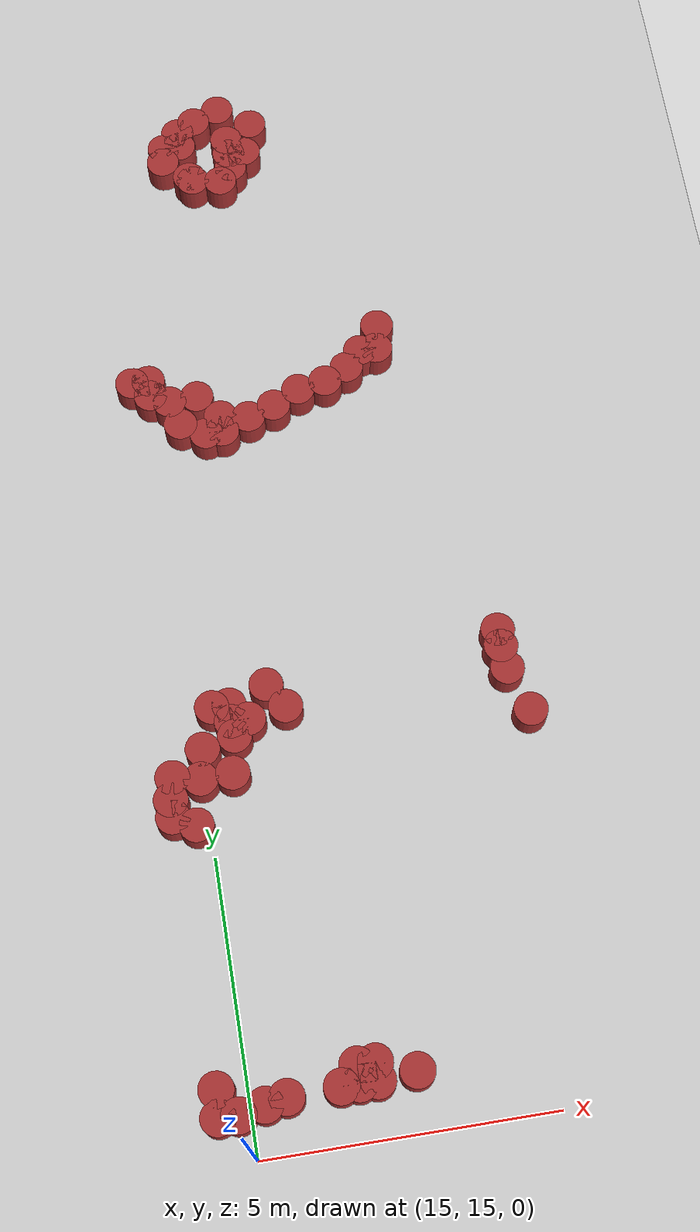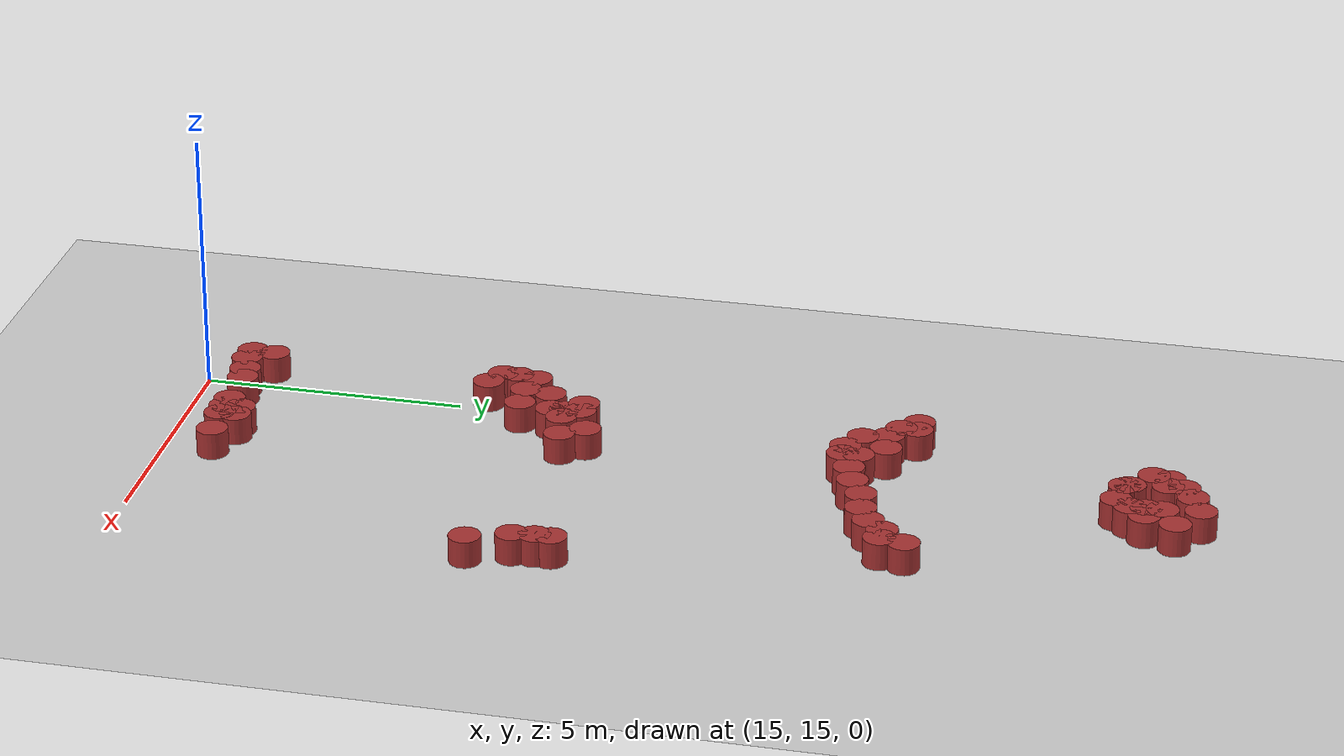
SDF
<sdf version="1.6">
 <world name="default">
  <model name="ground_plane">
   <static>1</static>
   <link name="link">
    <collision name="collision">
     <geometry><plane><normal>0 0 1</normal><size>100 100</size></plane></geometry>
     <surface><friction><ode><mu>100</mu><mu2>50</mu2></ode></friction></surface>
    </collision>
    <visual name="visual">
     <cast_shadows>0</cast_shadows>
     <geometry><plane><normal>0 0 1</normal><size>100 100</size></plane></geometry>
     <material>
      <script><uri>file://media/materials/scripts/gazebo.material</uri><name>Gazebo/Grey</name></script>
     </material>
    </visual>
   </link>
  </model>
  <model name="unit_cylinder_122">
   <static>1</static>
   <pose>14.4747 21.3826 0 0 -0 0</pose>
   <link name="link">
    <inertial>
     <mass>1</mass>
     <inertia><ixx>0.145833</ixx><ixy>0</ixy><ixz>0</ixz><iyy>0.145833</iyy><iyz>0</iyz><izz>0.125</izz></inertia>
    </inertial>
    <collision name="collision">
     <geometry><cylinder><radius>0.3</radius><length>1</length></cylinder></geometry>
    </collision>
    <visual name="visual">
     <geometry><cylinder><radius>0.3</radius><length>1</length></cylinder></geometry>
     <material><ambient>0.648 0.192 0.192 1</ambient><diffuse>0.648 0.192 0.192 1</diffuse></material>
     <material>
      <script><name>Gazebo/Grey</name><uri>file://media/materials/scripts/gazebo.material</uri></script>
     </material>
    </visual>
   </link>
  </model>
  <model name="unit_cylinder_123">
   <static>1</static>
   <pose>14.7741 20.5054 0 0 -0 0</pose>
   <link name="link">
    <inertial>
     <mass>1</mass>
     <inertia><ixx>0.145833</ixx><ixy>0</ixy><ixz>0</ixz><iyy>0.145833</iyy><iyz>0</iyz><izz>0.125</izz></inertia>
    </inertial>
    <collision name="collision">
     <geometry><cylinder><radius>0.3</radius><length>1</length></cylinder></geometry>
    </collision>
    <visual name="visual">
     <geometry><cylinder><radius>0.3</radius><length>1</length></cylinder></geometry>
     <material><ambient>0.648 0.192 0.192 1</ambient><diffuse>0.648 0.192 0.192 1</diffuse></material>
     <material>
      <script><name>Gazebo/Grey</name><uri>file://media/materials/scripts/gazebo.material</uri></script>
     </material>
    </visual>
   </link>
  </model>
  <model name="unit_cylinder_124">
   <static>1</static>
   <pose>15.4674 27.8557 0 0 -0 0</pose>
   <link name="link">
    <inertial>
     <mass>1</mass>
     <inertia><ixx>0.145833</ixx><ixy>0</ixy><ixz>0</ixz><iyy>0.145833</iyy><iyz>0</iyz><izz>0.125</izz></inertia>
    </inertial>
    <collision name="collision">
     <geometry><cylinder><radius>0.3</radius><length>1</length></cylinder></geometry>
    </collision>
    <visual name="visual">
     <geometry><cylinder><radius>0.3</radius><length>1</length></cylinder></geometry>
     <material><ambient>0.648 0.192 0.192 1</ambient><diffuse>0.648 0.192 0.192 1</diffuse></material>
     <material>
      <script><name>Gazebo/Grey</name><uri>file://media/materials/scripts/gazebo.material</uri></script>
     </material>
    </visual>
   </link>
  </model>
  <model name="unit_cylinder_146">
   <static>1</static>
   <pose>17.7527 15.9573 0 0 -0 0</pose>
   <link name="link">
    <inertial>
     <mass>1</mass>
     <inertia><ixx>0.145833</ixx><ixy>0</ixy><ixz>0</ixz><iyy>0.145833</iyy><iyz>0</iyz><izz>0.125</izz></inertia>
    </inertial>
    <collision name="collision">
     <geometry><cylinder><radius>0.3</radius><length>1</length></cylinder></geometry>
    </collision>
    <visual name="visual">
     <geometry><cylinder><radius>0.3</radius><length>1</length></cylinder></geometry>
     <material><ambient>0.648 0.192 0.192 1</ambient><diffuse>0.648 0.192 0.192 1</diffuse></material>
     <material>
      <script><name>Gazebo/Grey</name><uri>file://media/materials/scripts/gazebo.material</uri></script>
     </material>
    </visual>
   </link>
  </model>
  <model name="unit_cylinder_151">
   <static>1</static>
   <pose>14.4 20.7 0 0 -0 0</pose>
   <link name="link">
    <inertial>
     <mass>1</mass>
     <inertia><ixx>0.145833</ixx><ixy>0</ixy><ixz>0</ixz><iyy>0.145833</iyy><iyz>0</iyz><izz>0.125</izz></inertia>
    </inertial>
    <collision name="collision">
     <geometry><cylinder><radius>0.3</radius><length>1</length></cylinder></geometry>
    </collision>
    <visual name="visual">
     <geometry><cylinder><radius>0.3</radius><length>1</length></cylinder></geometry>
     <material><ambient>0.648 0.192 0.192 1</ambient><diffuse>0.648 0.192 0.192 1</diffuse></material>
     <material>
      <script><name>Gazebo/Grey</name><uri>file://media/materials/scripts/gazebo.material</uri></script>
     </material>
    </visual>
   </link>
  </model>
  <model name="unit_cylinder_152">
   <static>1</static>
   <pose>14.4 21 0 0 -0 0</pose>
   <link name="link">
    <inertial>
     <mass>1</mass>
     <inertia><ixx>0.145833</ixx><ixy>0</ixy><ixz>0</ixz><iyy>0.145833</iyy><iyz>0</iyz><izz>0.125</izz></inertia>
    </inertial>
    <collision name="collision">
     <geometry><cylinder><radius>0.3</radius><length>1</length></cylinder></geometry>
    </collision>
    <visual name="visual">
     <geometry><cylinder><radius>0.3</radius><length>1</length></cylinder></geometry>
     <material><ambient>0.648 0.192 0.192 1</ambient><diffuse>0.648 0.192 0.192 1</diffuse></material>
     <material>
      <script><name>Gazebo/Grey</name><uri>file://media/materials/scripts/gazebo.material</uri></script>
     </material>
    </visual>
   </link>
  </model>
  <model name="unit_cylinder_158">
   <static>1</static>
   <pose>14.7 28.8 0 0 -0 0</pose>
   <link name="link">
    <inertial>
     <mass>1</mass>
     <inertia><ixx>0.145833</ixx><ixy>0</ixy><ixz>0</ixz><iyy>0.145833</iyy><iyz>0</iyz><izz>0.125</izz></inertia>
    </inertial>
    <collision name="collision">
     <geometry><cylinder><radius>0.3</radius><length>1</length></cylinder></geometry>
    </collision>
    <visual name="visual">
     <geometry><cylinder><radius>0.3</radius><length>1</length></cylinder></geometry>
     <material><ambient>0.648 0.192 0.192 1</ambient><diffuse>0.648 0.192 0.192 1</diffuse></material>
     <material>
      <script><name>Gazebo/Grey</name><uri>file://media/materials/scripts/gazebo.material</uri></script>
     </material>
    </visual>
   </link>
  </model>
  <model name="unit_cylinder_160">
   <static>1</static>
   <pose>14.8079 15.716 0 0 -0 0</pose>
   <link name="link">
    <inertial>
     <mass>1</mass>
     <inertia><ixx>0.145833</ixx><ixy>0</ixy><ixz>0</ixz><iyy>0.145833</iyy><iyz>0</iyz><izz>0.125</izz></inertia>
    </inertial>
    <collision name="collision">
     <geometry><cylinder><radius>0.3</radius><length>1</length></cylinder></geometry>
    </collision>
    <visual name="visual">
     <geometry><cylinder><radius>0.3</radius><length>1</length></cylinder></geometry>
     <material><ambient>0.648 0.192 0.192 1</ambient><diffuse>0.648 0.192 0.192 1</diffuse></material>
     <material>
      <script><name>Gazebo/Grey</name><uri>file://media/materials/scripts/gazebo.material</uri></script>
     </material>
    </visual>
   </link>
  </model>
  <model name="unit_cylinder_161">
   <static>1</static>
   <pose>15 28.5 0 0 -0 0</pose>
   <link name="link">
    <inertial>
     <mass>1</mass>
     <inertia><ixx>0.145833</ixx><ixy>0</ixy><ixz>0</ixz><iyy>0.145833</iyy><iyz>0</iyz><izz>0.125</izz></inertia>
    </inertial>
    <collision name="collision">
     <geometry><cylinder><radius>0.3</radius><length>1</length></cylinder></geometry>
    </collision>
    <visual name="visual">
     <geometry><cylinder><radius>0.3</radius><length>1</length></cylinder></geometry>
     <material><ambient>0.648 0.192 0.192 1</ambient><diffuse>0.648 0.192 0.192 1</diffuse></material>
     <material>
      <script><name>Gazebo/Grey</name><uri>file://media/materials/scripts/gazebo.material</uri></script>
     </material>
    </visual>
   </link>
  </model>
  <model name="unit_cylinder_162">
   <static>1</static>
   <pose>15 28.8 0 0 -0 0</pose>
   <link name="link">
    <inertial>
     <mass>1</mass>
     <inertia><ixx>0.145833</ixx><ixy>0</ixy><ixz>0</ixz><iyy>0.145833</iyy><iyz>0</iyz><izz>0.125</izz></inertia>
    </inertial>
    <collision name="collision">
     <geometry><cylinder><radius>0.3</radius><length>1</length></cylinder></geometry>
    </collision>
    <visual name="visual">
     <geometry><cylinder><radius>0.3</radius><length>1</length></cylinder></geometry>
     <material><ambient>0.648 0.192 0.192 1</ambient><diffuse>0.648 0.192 0.192 1</diffuse></material>
     <material>
      <script><name>Gazebo/Grey</name><uri>file://media/materials/scripts/gazebo.material</uri></script>
     </material>
    </visual>
   </link>
  </model>
  <model name="unit_cylinder_163">
   <static>1</static>
   <pose>16.2964 32.9167 0 0 -0 0</pose>
   <link name="link">
    <inertial>
     <mass>1</mass>
     <inertia><ixx>0.145833</ixx><ixy>0</ixy><ixz>0</ixz><iyy>0.145833</iyy><iyz>0</iyz><izz>0.125</izz></inertia>
    </inertial>
    <collision name="collision">
     <geometry><cylinder><radius>0.3</radius><length>1</length></cylinder></geometry>
    </collision>
    <visual name="visual">
     <geometry><cylinder><radius>0.3</radius><length>1</length></cylinder></geometry>
     <material><ambient>0.648 0.192 0.192 1</ambient><diffuse>0.648 0.192 0.192 1</diffuse></material>
     <material>
      <script><name>Gazebo/Grey</name><uri>file://media/materials/scripts/gazebo.material</uri></script>
     </material>
    </visual>
   </link>
  </model>
  <model name="unit_cylinder_164">
   <static>1</static>
   <pose>15.8461 33.3064 0 0 -0 0</pose>
   <link name="link">
    <inertial>
     <mass>1</mass>
     <inertia><ixx>0.145833</ixx><ixy>0</ixy><ixz>0</ixz><iyy>0.145833</iyy><iyz>0</iyz><izz>0.125</izz></inertia>
    </inertial>
    <collision name="collision">
     <geometry><cylinder><radius>0.3</radius><length>1</length></cylinder></geometry>
    </collision>
    <visual name="visual">
     <geometry><cylinder><radius>0.3</radius><length>1</length></cylinder></geometry>
     <material><ambient>0.648 0.192 0.192 1</ambient><diffuse>0.648 0.192 0.192 1</diffuse></material>
     <material>
      <script><name>Gazebo/Grey</name><uri>file://media/materials/scripts/gazebo.material</uri></script>
     </material>
    </visual>
   </link>
  </model>
  <model name="unit_cylinder_168">
   <static>1</static>
   <pose>14.5047 16.1725 0 0 -0 0</pose>
   <link name="link">
    <inertial>
     <mass>1</mass>
     <inertia><ixx>0.145833</ixx><ixy>0</ixy><ixz>0</ixz><iyy>0.145833</iyy><iyz>0</iyz><izz>0.125</izz></inertia>
    </inertial>
    <collision name="collision">
     <geometry><cylinder><radius>0.3</radius><length>1</length></cylinder></geometry>
    </collision>
    <visual name="visual">
     <geometry><cylinder><radius>0.3</radius><length>1</length></cylinder></geometry>
     <material><ambient>0.648 0.192 0.192 1</ambient><diffuse>0.648 0.192 0.192 1</diffuse></material>
     <material>
      <script><name>Gazebo/Grey</name><uri>file://media/materials/scripts/gazebo.material</uri></script>
     </material>
    </visual>
   </link>
  </model>
  <model name="unit_cylinder_170">
   <static>1</static>
   <pose>15.3 22.5 0 0 -0 0</pose>
   <link name="link">
    <inertial>
     <mass>1</mass>
     <inertia><ixx>0.145833</ixx><ixy>0</ixy><ixz>0</ixz><iyy>0.145833</iyy><iyz>0</iyz><izz>0.125</izz></inertia>
    </inertial>
    <collision name="collision">
     <geometry><cylinder><radius>0.3</radius><length>1</length></cylinder></geometry>
    </collision>
    <visual name="visual">
     <geometry><cylinder><radius>0.3</radius><length>1</length></cylinder></geometry>
     <material><ambient>0.648 0.192 0.192 1</ambient><diffuse>0.648 0.192 0.192 1</diffuse></material>
     <material>
      <script><name>Gazebo/Grey</name><uri>file://media/materials/scripts/gazebo.material</uri></script>
     </material>
    </visual>
   </link>
  </model>
  <model name="unit_cylinder_173">
   <static>1</static>
   <pose>16.8687 32.7353 0 0 -0 0</pose>
   <link name="link">
    <inertial>
     <mass>1</mass>
     <inertia><ixx>0.145833</ixx><ixy>0</ixy><ixz>0</ixz><iyy>0.145833</iyy><iyz>0</iyz><izz>0.125</izz></inertia>
    </inertial>
    <collision name="collision">
     <geometry><cylinder><radius>0.3</radius><length>1</length></cylinder></geometry>
    </collision>
    <visual name="visual">
     <geometry><cylinder><radius>0.3</radius><length>1</length></cylinder></geometry>
     <material><ambient>0.648 0.192 0.192 1</ambient><diffuse>0.648 0.192 0.192 1</diffuse></material>
     <material>
      <script><name>Gazebo/Grey</name><uri>file://media/materials/scripts/gazebo.material</uri></script>
     </material>
    </visual>
   </link>
  </model>
  <model name="unit_cylinder_174">
   <static>1</static>
   <pose>17.5913 33.8782 0 0 -0 0</pose>
   <link name="link">
    <inertial>
     <mass>1</mass>
     <inertia><ixx>0.145833</ixx><ixy>0</ixy><ixz>0</ixz><iyy>0.145833</iyy><iyz>0</iyz><izz>0.125</izz></inertia>
    </inertial>
    <collision name="collision">
     <geometry><cylinder><radius>0.3</radius><length>1</length></cylinder></geometry>
    </collision>
    <visual name="visual">
     <geometry><cylinder><radius>0.3</radius><length>1</length></cylinder></geometry>
     <material><ambient>0.648 0.192 0.192 1</ambient><diffuse>0.648 0.192 0.192 1</diffuse></material>
     <material>
      <script><name>Gazebo/Grey</name><uri>file://media/materials/scripts/gazebo.material</uri></script>
     </material>
    </visual>
   </link>
  </model>
  <model name="unit_cylinder_178">
   <static>1</static>
   <pose>15.6108 15.8768 0 0 -0 0</pose>
   <link name="link">
    <inertial>
     <mass>1</mass>
     <inertia><ixx>0.145833</ixx><ixy>0</ixy><ixz>0</ixz><iyy>0.145833</iyy><iyz>0</iyz><izz>0.125</izz></inertia>
    </inertial>
    <collision name="collision">
     <geometry><cylinder><radius>0.3</radius><length>1</length></cylinder></geometry>
    </collision>
    <visual name="visual">
     <geometry><cylinder><radius>0.3</radius><length>1</length></cylinder></geometry>
     <material><ambient>0.648 0.192 0.192 1</ambient><diffuse>0.648 0.192 0.192 1</diffuse></material>
     <material>
      <script><name>Gazebo/Grey</name><uri>file://media/materials/scripts/gazebo.material</uri></script>
     </material>
    </visual>
   </link>
  </model>
  <model name="unit_cylinder_179">
   <static>1</static>
   <pose>15.2522 15.814 0 0 -0 0</pose>
   <link name="link">
    <inertial>
     <mass>1</mass>
     <inertia><ixx>0.145833</ixx><ixy>0</ixy><ixz>0</ixz><iyy>0.145833</iyy><iyz>0</iyz><izz>0.125</izz></inertia>
    </inertial>
    <collision name="collision">
     <geometry><cylinder><radius>0.3</radius><length>1</length></cylinder></geometry>
    </collision>
    <visual name="visual">
     <geometry><cylinder><radius>0.3</radius><length>1</length></cylinder></geometry>
     <material><ambient>0.648 0.192 0.192 1</ambient><diffuse>0.648 0.192 0.192 1</diffuse></material>
     <material>
      <script><name>Gazebo/Grey</name><uri>file://media/materials/scripts/gazebo.material</uri></script>
     </material>
    </visual>
   </link>
  </model>
  <model name="unit_cylinder_180">
   <static>1</static>
   <pose>15.6 22.2 0 0 -0 0</pose>
   <link name="link">
    <inertial>
     <mass>1</mass>
     <inertia><ixx>0.145833</ixx><ixy>0</ixy><ixz>0</ixz><iyy>0.145833</iyy><iyz>0</iyz><izz>0.125</izz></inertia>
    </inertial>
    <collision name="collision">
     <geometry><cylinder><radius>0.3</radius><length>1</length></cylinder></geometry>
    </collision>
    <visual name="visual">
     <geometry><cylinder><radius>0.3</radius><length>1</length></cylinder></geometry>
     <material><ambient>0.648 0.192 0.192 1</ambient><diffuse>0.648 0.192 0.192 1</diffuse></material>
     <material>
      <script><name>Gazebo/Grey</name><uri>file://media/materials/scripts/gazebo.material</uri></script>
     </material>
    </visual>
   </link>
  </model>
  <model name="unit_cylinder_181">
   <static>1</static>
   <pose>15.6 22.5 0 0 -0 0</pose>
   <link name="link">
    <inertial>
     <mass>1</mass>
     <inertia><ixx>0.145833</ixx><ixy>0</ixy><ixz>0</ixz><iyy>0.145833</iyy><iyz>0</iyz><izz>0.125</izz></inertia>
    </inertial>
    <collision name="collision">
     <geometry><cylinder><radius>0.3</radius><length>1</length></cylinder></geometry>
    </collision>
    <visual name="visual">
     <geometry><cylinder><radius>0.3</radius><length>1</length></cylinder></geometry>
     <material><ambient>0.648 0.192 0.192 1</ambient><diffuse>0.648 0.192 0.192 1</diffuse></material>
     <material>
      <script><name>Gazebo/Grey</name><uri>file://media/materials/scripts/gazebo.material</uri></script>
     </material>
    </visual>
   </link>
  </model>
  <model name="unit_cylinder_182">
   <static>1</static>
   <pose>16.3543 32.8249 0 0 -0 0</pose>
   <link name="link">
    <inertial>
     <mass>1</mass>
     <inertia><ixx>0.145833</ixx><ixy>0</ixy><ixz>0</ixz><iyy>0.145833</iyy><iyz>0</iyz><izz>0.125</izz></inertia>
    </inertial>
    <collision name="collision">
     <geometry><cylinder><radius>0.3</radius><length>1</length></cylinder></geometry>
    </collision>
    <visual name="visual">
     <geometry><cylinder><radius>0.3</radius><length>1</length></cylinder></geometry>
     <material><ambient>0.648 0.192 0.192 1</ambient><diffuse>0.648 0.192 0.192 1</diffuse></material>
     <material>
      <script><name>Gazebo/Grey</name><uri>file://media/materials/scripts/gazebo.material</uri></script>
     </material>
    </visual>
   </link>
  </model>
  <model name="unit_cylinder_183">
   <static>1</static>
   <pose>16.5357 34.0919 0 0 -0 0</pose>
   <link name="link">
    <inertial>
     <mass>1</mass>
     <inertia><ixx>0.145833</ixx><ixy>0</ixy><ixz>0</ixz><iyy>0.145833</iyy><iyz>0</iyz><izz>0.125</izz></inertia>
    </inertial>
    <collision name="collision">
     <geometry><cylinder><radius>0.3</radius><length>1</length></cylinder></geometry>
    </collision>
    <visual name="visual">
     <geometry><cylinder><radius>0.3</radius><length>1</length></cylinder></geometry>
     <material><ambient>0.648 0.192 0.192 1</ambient><diffuse>0.648 0.192 0.192 1</diffuse></material>
     <material>
      <script><name>Gazebo/Grey</name><uri>file://media/materials/scripts/gazebo.material</uri></script>
     </material>
    </visual>
   </link>
  </model>
  <model name="unit_cylinder_184">
   <static>1</static>
   <pose>17.0147 34.2833 0 0 -0 0</pose>
   <link name="link">
    <inertial>
     <mass>1</mass>
     <inertia><ixx>0.145833</ixx><ixy>0</ixy><ixz>0</ixz><iyy>0.145833</iyy><iyz>0</iyz><izz>0.125</izz></inertia>
    </inertial>
    <collision name="collision">
     <geometry><cylinder><radius>0.3</radius><length>1</length></cylinder></geometry>
    </collision>
    <visual name="visual">
     <geometry><cylinder><radius>0.3</radius><length>1</length></cylinder></geometry>
     <material><ambient>0.648 0.192 0.192 1</ambient><diffuse>0.648 0.192 0.192 1</diffuse></material>
     <material>
      <script><name>Gazebo/Grey</name><uri>file://media/materials/scripts/gazebo.material</uri></script>
     </material>
    </visual>
   </link>
  </model>
  <model name="unit_cylinder_188">
   <static>1</static>
   <pose>15.9 22.2 0 0 -0 0</pose>
   <link name="link">
    <inertial>
     <mass>1</mass>
     <inertia><ixx>0.145833</ixx><ixy>0</ixy><ixz>0</ixz><iyy>0.145833</iyy><iyz>0</iyz><izz>0.125</izz></inertia>
    </inertial>
    <collision name="collision">
     <geometry><cylinder><radius>0.3</radius><length>1</length></cylinder></geometry>
    </collision>
    <visual name="visual">
     <geometry><cylinder><radius>0.3</radius><length>1</length></cylinder></geometry>
     <material><ambient>0.648 0.192 0.192 1</ambient><diffuse>0.648 0.192 0.192 1</diffuse></material>
     <material>
      <script><name>Gazebo/Grey</name><uri>file://media/materials/scripts/gazebo.material</uri></script>
     </material>
    </visual>
   </link>
  </model>
  <model name="unit_cylinder_189">
   <static>1</static>
   <pose>15.9 27.6 0 0 -0 0</pose>
   <link name="link">
    <inertial>
     <mass>1</mass>
     <inertia><ixx>0.145833</ixx><ixy>0</ixy><ixz>0</ixz><iyy>0.145833</iyy><iyz>0</iyz><izz>0.125</izz></inertia>
    </inertial>
    <collision name="collision">
     <geometry><cylinder><radius>0.3</radius><length>1</length></cylinder></geometry>
    </collision>
    <visual name="visual">
     <geometry><cylinder><radius>0.3</radius><length>1</length></cylinder></geometry>
     <material><ambient>0.648 0.192 0.192 1</ambient><diffuse>0.648 0.192 0.192 1</diffuse></material>
     <material>
      <script><name>Gazebo/Grey</name><uri>file://media/materials/scripts/gazebo.material</uri></script>
     </material>
    </visual>
   </link>
  </model>
  <model name="unit_cylinder_190">
   <static>1</static>
   <pose>15.9 33.6 0 0 -0 0</pose>
   <link name="link">
    <inertial>
     <mass>1</mass>
     <inertia><ixx>0.145833</ixx><ixy>0</ixy><ixz>0</ixz><iyy>0.145833</iyy><iyz>0</iyz><izz>0.125</izz></inertia>
    </inertial>
    <collision name="collision">
     <geometry><cylinder><radius>0.3</radius><length>1</length></cylinder></geometry>
    </collision>
    <visual name="visual">
     <geometry><cylinder><radius>0.3</radius><length>1</length></cylinder></geometry>
     <material><ambient>0.648 0.192 0.192 1</ambient><diffuse>0.648 0.192 0.192 1</diffuse></material>
     <material>
      <script><name>Gazebo/Grey</name><uri>file://media/materials/scripts/gazebo.material</uri></script>
     </material>
    </visual>
   </link>
  </model>
  <model name="unit_cylinder_192">
   <static>1</static>
   <pose>15.3266 28.3243 0 0 -0 0</pose>
   <link name="link">
    <inertial>
     <mass>1</mass>
     <inertia><ixx>0.145833</ixx><ixy>0</ixy><ixz>0</ixz><iyy>0.145833</iyy><iyz>0</iyz><izz>0.125</izz></inertia>
    </inertial>
    <collision name="collision">
     <geometry><cylinder><radius>0.3</radius><length>1</length></cylinder></geometry>
    </collision>
    <visual name="visual">
     <geometry><cylinder><radius>0.3</radius><length>1</length></cylinder></geometry>
     <material><ambient>0.648 0.192 0.192 1</ambient><diffuse>0.648 0.192 0.192 1</diffuse></material>
     <material>
      <script><name>Gazebo/Grey</name><uri>file://media/materials/scripts/gazebo.material</uri></script>
     </material>
    </visual>
   </link>
  </model>
  <model name="unit_cylinder_193">
   <static>1</static>
   <pose>16.2 27.6 0 0 -0 0</pose>
   <link name="link">
    <inertial>
     <mass>1</mass>
     <inertia><ixx>0.145833</ixx><ixy>0</ixy><ixz>0</ixz><iyy>0.145833</iyy><iyz>0</iyz><izz>0.125</izz></inertia>
    </inertial>
    <collision name="collision">
     <geometry><cylinder><radius>0.3</radius><length>1</length></cylinder></geometry>
    </collision>
    <visual name="visual">
     <geometry><cylinder><radius>0.3</radius><length>1</length></cylinder></geometry>
     <material><ambient>0.648 0.192 0.192 1</ambient><diffuse>0.648 0.192 0.192 1</diffuse></material>
     <material>
      <script><name>Gazebo/Grey</name><uri>file://media/materials/scripts/gazebo.material</uri></script>
     </material>
    </visual>
   </link>
  </model>
  <model name="unit_cylinder_194">
   <static>1</static>
   <pose>16.2 27.9 0 0 -0 0</pose>
   <link name="link">
    <inertial>
     <mass>1</mass>
     <inertia><ixx>0.145833</ixx><ixy>0</ixy><ixz>0</ixz><iyy>0.145833</iyy><iyz>0</iyz><izz>0.125</izz></inertia>
    </inertial>
    <collision name="collision">
     <geometry><cylinder><radius>0.3</radius><length>1</length></cylinder></geometry>
    </collision>
    <visual name="visual">
     <geometry><cylinder><radius>0.3</radius><length>1</length></cylinder></geometry>
     <material><ambient>0.648 0.192 0.192 1</ambient><diffuse>0.648 0.192 0.192 1</diffuse></material>
     <material>
      <script><name>Gazebo/Grey</name><uri>file://media/materials/scripts/gazebo.material</uri></script>
     </material>
    </visual>
   </link>
  </model>
  <model name="unit_cylinder_195">
   <static>1</static>
   <pose>16.2 33.6 0 0 -0 0</pose>
   <link name="link">
    <inertial>
     <mass>1</mass>
     <inertia><ixx>0.145833</ixx><ixy>0</ixy><ixz>0</ixz><iyy>0.145833</iyy><iyz>0</iyz><izz>0.125</izz></inertia>
    </inertial>
    <collision name="collision">
     <geometry><cylinder><radius>0.3</radius><length>1</length></cylinder></geometry>
    </collision>
    <visual name="visual">
     <geometry><cylinder><radius>0.3</radius><length>1</length></cylinder></geometry>
     <material><ambient>0.648 0.192 0.192 1</ambient><diffuse>0.648 0.192 0.192 1</diffuse></material>
     <material>
      <script><name>Gazebo/Grey</name><uri>file://media/materials/scripts/gazebo.material</uri></script>
     </material>
    </visual>
   </link>
  </model>
  <model name="unit_cylinder_196">
   <static>1</static>
   <pose>16.2 33.9 0 0 -0 0</pose>
   <link name="link">
    <inertial>
     <mass>1</mass>
     <inertia><ixx>0.145833</ixx><ixy>0</ixy><ixz>0</ixz><iyy>0.145833</iyy><iyz>0</iyz><izz>0.125</izz></inertia>
    </inertial>
    <collision name="collision">
     <geometry><cylinder><radius>0.3</radius><length>1</length></cylinder></geometry>
    </collision>
    <visual name="visual">
     <geometry><cylinder><radius>0.3</radius><length>1</length></cylinder></geometry>
     <material><ambient>0.648 0.192 0.192 1</ambient><diffuse>0.648 0.192 0.192 1</diffuse></material>
     <material>
      <script><name>Gazebo/Grey</name><uri>file://media/materials/scripts/gazebo.material</uri></script>
     </material>
    </visual>
   </link>
  </model>
  <model name="unit_cylinder_198">
   <static>1</static>
   <pose>16.5 15.9 0 0 -0 0</pose>
   <link name="link">
    <inertial>
     <mass>1</mass>
     <inertia><ixx>0.145833</ixx><ixy>0</ixy><ixz>0</ixz><iyy>0.145833</iyy><iyz>0</iyz><izz>0.125</izz></inertia>
    </inertial>
    <collision name="collision">
     <geometry><cylinder><radius>0.3</radius><length>1</length></cylinder></geometry>
    </collision>
    <visual name="visual">
     <geometry><cylinder><radius>0.3</radius><length>1</length></cylinder></geometry>
     <material><ambient>0.648 0.192 0.192 1</ambient><diffuse>0.648 0.192 0.192 1</diffuse></material>
     <material>
      <script><name>Gazebo/Grey</name><uri>file://media/materials/scripts/gazebo.material</uri></script>
     </material>
    </visual>
   </link>
  </model>
  <model name="unit_cylinder_201">
   <static>1</static>
   <pose>16.8 15.9 0 0 -0 0</pose>
   <link name="link">
    <inertial>
     <mass>1</mass>
     <inertia><ixx>0.145833</ixx><ixy>0</ixy><ixz>0</ixz><iyy>0.145833</iyy><iyz>0</iyz><izz>0.125</izz></inertia>
    </inertial>
    <collision name="collision">
     <geometry><cylinder><radius>0.3</radius><length>1</length></cylinder></geometry>
    </collision>
    <visual name="visual">
     <geometry><cylinder><radius>0.3</radius><length>1</length></cylinder></geometry>
     <material><ambient>0.648 0.192 0.192 1</ambient><diffuse>0.648 0.192 0.192 1</diffuse></material>
     <material>
      <script><name>Gazebo/Grey</name><uri>file://media/materials/scripts/gazebo.material</uri></script>
     </material>
    </visual>
   </link>
  </model>
  <model name="unit_cylinder_202">
   <static>1</static>
   <pose>16.8 16.2 0 0 -0 0</pose>
   <link name="link">
    <inertial>
     <mass>1</mass>
     <inertia><ixx>0.145833</ixx><ixy>0</ixy><ixz>0</ixz><iyy>0.145833</iyy><iyz>0</iyz><izz>0.125</izz></inertia>
    </inertial>
    <collision name="collision">
     <geometry><cylinder><radius>0.3</radius><length>1</length></cylinder></geometry>
    </collision>
    <visual name="visual">
     <geometry><cylinder><radius>0.3</radius><length>1</length></cylinder></geometry>
     <material><ambient>0.648 0.192 0.192 1</ambient><diffuse>0.648 0.192 0.192 1</diffuse></material>
     <material>
      <script><name>Gazebo/Grey</name><uri>file://media/materials/scripts/gazebo.material</uri></script>
     </material>
    </visual>
   </link>
  </model>
  <model name="unit_cylinder_205">
   <static>1</static>
   <pose>17.1 15.9 0 0 -0 0</pose>
   <link name="link">
    <inertial>
     <mass>1</mass>
     <inertia><ixx>0.145833</ixx><ixy>0</ixy><ixz>0</ixz><iyy>0.145833</iyy><iyz>0</iyz><izz>0.125</izz></inertia>
    </inertial>
    <collision name="collision">
     <geometry><cylinder><radius>0.3</radius><length>1</length></cylinder></geometry>
    </collision>
    <visual name="visual">
     <geometry><cylinder><radius>0.3</radius><length>1</length></cylinder></geometry>
     <material><ambient>0.648 0.192 0.192 1</ambient><diffuse>0.648 0.192 0.192 1</diffuse></material>
     <material>
      <script><name>Gazebo/Grey</name><uri>file://media/materials/scripts/gazebo.material</uri></script>
     </material>
    </visual>
   </link>
  </model>
  <model name="unit_cylinder_206">
   <static>1</static>
   <pose>17.1 16.2 0 0 -0 0</pose>
   <link name="link">
    <inertial>
     <mass>1</mass>
     <inertia><ixx>0.145833</ixx><ixy>0</ixy><ixz>0</ixz><iyy>0.145833</iyy><iyz>0</iyz><izz>0.125</izz></inertia>
    </inertial>
    <collision name="collision">
     <geometry><cylinder><radius>0.3</radius><length>1</length></cylinder></geometry>
    </collision>
    <visual name="visual">
     <geometry><cylinder><radius>0.3</radius><length>1</length></cylinder></geometry>
     <material><ambient>0.648 0.192 0.192 1</ambient><diffuse>0.648 0.192 0.192 1</diffuse></material>
     <material>
      <script><name>Gazebo/Grey</name><uri>file://media/materials/scripts/gazebo.material</uri></script>
     </material>
    </visual>
   </link>
  </model>
  <model name="unit_cylinder_209">
   <static>1</static>
   <pose>17.1 33 0 0 -0 0</pose>
   <link name="link">
    <inertial>
     <mass>1</mass>
     <inertia><ixx>0.145833</ixx><ixy>0</ixy><ixz>0</ixz><iyy>0.145833</iyy><iyz>0</iyz><izz>0.125</izz></inertia>
    </inertial>
    <collision name="collision">
     <geometry><cylinder><radius>0.3</radius><length>1</length></cylinder></geometry>
    </collision>
    <visual name="visual">
     <geometry><cylinder><radius>0.3</radius><length>1</length></cylinder></geometry>
     <material><ambient>0.648 0.192 0.192 1</ambient><diffuse>0.648 0.192 0.192 1</diffuse></material>
     <material>
      <script><name>Gazebo/Grey</name><uri>file://media/materials/scripts/gazebo.material</uri></script>
     </material>
    </visual>
   </link>
  </model>
  <model name="unit_cylinder_210">
   <static>1</static>
   <pose>17.1 33.3 0 0 -0 0</pose>
   <link name="link">
    <inertial>
     <mass>1</mass>
     <inertia><ixx>0.145833</ixx><ixy>0</ixy><ixz>0</ixz><iyy>0.145833</iyy><iyz>0</iyz><izz>0.125</izz></inertia>
    </inertial>
    <collision name="collision">
     <geometry><cylinder><radius>0.3</radius><length>1</length></cylinder></geometry>
    </collision>
    <visual name="visual">
     <geometry><cylinder><radius>0.3</radius><length>1</length></cylinder></geometry>
     <material><ambient>0.648 0.192 0.192 1</ambient><diffuse>0.648 0.192 0.192 1</diffuse></material>
     <material>
      <script><name>Gazebo/Grey</name><uri>file://media/materials/scripts/gazebo.material</uri></script>
     </material>
    </visual>
   </link>
  </model>
  <model name="unit_cylinder_211">
   <static>1</static>
   <pose>17.1 33.6 0 0 -0 0</pose>
   <link name="link">
    <inertial>
     <mass>1</mass>
     <inertia><ixx>0.145833</ixx><ixy>0</ixy><ixz>0</ixz><iyy>0.145833</iyy><iyz>0</iyz><izz>0.125</izz></inertia>
    </inertial>
    <collision name="collision">
     <geometry><cylinder><radius>0.3</radius><length>1</length></cylinder></geometry>
    </collision>
    <visual name="visual">
     <geometry><cylinder><radius>0.3</radius><length>1</length></cylinder></geometry>
     <material><ambient>0.648 0.192 0.192 1</ambient><diffuse>0.648 0.192 0.192 1</diffuse></material>
     <material>
      <script><name>Gazebo/Grey</name><uri>file://media/materials/scripts/gazebo.material</uri></script>
     </material>
    </visual>
   </link>
  </model>
  <model name="unit_cylinder_216">
   <static>1</static>
   <pose>15.8302 28.3512 0 0 -0 0</pose>
   <link name="link">
    <inertial>
     <mass>1</mass>
     <inertia><ixx>0.145833</ixx><ixy>0</ixy><ixz>0</ixz><iyy>0.145833</iyy><iyz>0</iyz><izz>0.125</izz></inertia>
    </inertial>
    <collision name="collision">
     <geometry><cylinder><radius>0.3</radius><length>1</length></cylinder></geometry>
    </collision>
    <visual name="visual">
     <geometry><cylinder><radius>0.3</radius><length>1</length></cylinder></geometry>
     <material><ambient>0.648 0.192 0.192 1</ambient><diffuse>0.648 0.192 0.192 1</diffuse></material>
     <material>
      <script><name>Gazebo/Grey</name><uri>file://media/materials/scripts/gazebo.material</uri></script>
     </material>
    </visual>
   </link>
  </model>
  <model name="unit_cylinder_217">
   <static>1</static>
   <pose>17.4 33.3 0 0 -0 0</pose>
   <link name="link">
    <inertial>
     <mass>1</mass>
     <inertia><ixx>0.145833</ixx><ixy>0</ixy><ixz>0</ixz><iyy>0.145833</iyy><iyz>0</iyz><izz>0.125</izz></inertia>
    </inertial>
    <collision name="collision">
     <geometry><cylinder><radius>0.3</radius><length>1</length></cylinder></geometry>
    </collision>
    <visual name="visual">
     <geometry><cylinder><radius>0.3</radius><length>1</length></cylinder></geometry>
     <material><ambient>0.648 0.192 0.192 1</ambient><diffuse>0.648 0.192 0.192 1</diffuse></material>
     <material>
      <script><name>Gazebo/Grey</name><uri>file://media/materials/scripts/gazebo.material</uri></script>
     </material>
    </visual>
   </link>
  </model>
  <model name="unit_cylinder_220">
   <static>1</static>
   <pose>16.5556 22.323 0 0 -0 0</pose>
   <link name="link">
    <inertial>
     <mass>1</mass>
     <inertia><ixx>0.145833</ixx><ixy>0</ixy><ixz>0</ixz><iyy>0.145833</iyy><iyz>0</iyz><izz>0.125</izz></inertia>
    </inertial>
    <collision name="collision">
     <geometry><cylinder><radius>0.3</radius><length>1</length></cylinder></geometry>
    </collision>
    <visual name="visual">
     <geometry><cylinder><radius>0.3</radius><length>1</length></cylinder></geometry>
     <material><ambient>0.648 0.192 0.192 1</ambient><diffuse>0.648 0.192 0.192 1</diffuse></material>
     <material>
      <script><name>Gazebo/Grey</name><uri>file://media/materials/scripts/gazebo.material</uri></script>
     </material>
    </visual>
   </link>
  </model>
  <model name="unit_cylinder_223">
   <static>1</static>
   <pose>14.4764 15.7299 0 0 -0 0</pose>
   <link name="link">
    <inertial>
     <mass>1</mass>
     <inertia><ixx>0.145833</ixx><ixy>0</ixy><ixz>0</ixz><iyy>0.145833</iyy><iyz>0</iyz><izz>0.125</izz></inertia>
    </inertial>
    <collision name="collision">
     <geometry><cylinder><radius>0.3</radius><length>1</length></cylinder></geometry>
    </collision>
    <visual name="visual">
     <geometry><cylinder><radius>0.3</radius><length>1</length></cylinder></geometry>
     <material><ambient>0.648 0.192 0.192 1</ambient><diffuse>0.648 0.192 0.192 1</diffuse></material>
     <material>
      <script><name>Gazebo/Grey</name><uri>file://media/materials/scripts/gazebo.material</uri></script>
     </material>
    </visual>
   </link>
  </model>
  <model name="unit_cylinder_224">
   <static>1</static>
   <pose>15.6192 21.9337 0 0 -0 0</pose>
   <link name="link">
    <inertial>
     <mass>1</mass>
     <inertia><ixx>0.145833</ixx><ixy>0</ixy><ixz>0</ixz><iyy>0.145833</iyy><iyz>0</iyz><izz>0.125</izz></inertia>
    </inertial>
    <collision name="collision">
     <geometry><cylinder><radius>0.3</radius><length>1</length></cylinder></geometry>
    </collision>
    <visual name="visual">
     <geometry><cylinder><radius>0.3</radius><length>1</length></cylinder></geometry>
     <material><ambient>0.648 0.192 0.192 1</ambient><diffuse>0.648 0.192 0.192 1</diffuse></material>
     <material>
      <script><name>Gazebo/Grey</name><uri>file://media/materials/scripts/gazebo.material</uri></script>
     </material>
    </visual>
   </link>
  </model>
  <model name="unit_cylinder_225">
   <static>1</static>
   <pose>15.4972 21.3007 0 0 -0 0</pose>
   <link name="link">
    <inertial>
     <mass>1</mass>
     <inertia><ixx>0.145833</ixx><ixy>0</ixy><ixz>0</ixz><iyy>0.145833</iyy><iyz>0</iyz><izz>0.125</izz></inertia>
    </inertial>
    <collision name="collision">
     <geometry><cylinder><radius>0.3</radius><length>1</length></cylinder></geometry>
    </collision>
    <visual name="visual">
     <geometry><cylinder><radius>0.3</radius><length>1</length></cylinder></geometry>
     <material><ambient>0.648 0.192 0.192 1</ambient><diffuse>0.648 0.192 0.192 1</diffuse></material>
     <material>
      <script><name>Gazebo/Grey</name><uri>file://media/materials/scripts/gazebo.material</uri></script>
     </material>
    </visual>
   </link>
  </model>
  <model name="unit_cylinder_229">
   <static>1</static>
   <pose>18.6 28.5 0 0 -0 0</pose>
   <link name="link">
    <inertial>
     <mass>1</mass>
     <inertia><ixx>0.145833</ixx><ixy>0</ixy><ixz>0</ixz><iyy>0.145833</iyy><iyz>0</iyz><izz>0.125</izz></inertia>
    </inertial>
    <collision name="collision">
     <geometry><cylinder><radius>0.3</radius><length>1</length></cylinder></geometry>
    </collision>
    <visual name="visual">
     <geometry><cylinder><radius>0.3</radius><length>1</length></cylinder></geometry>
     <material><ambient>0.648 0.192 0.192 1</ambient><diffuse>0.648 0.192 0.192 1</diffuse></material>
     <material>
      <script><name>Gazebo/Grey</name><uri>file://media/materials/scripts/gazebo.material</uri></script>
     </material>
    </visual>
   </link>
  </model>
  <model name="unit_cylinder_231">
   <static>1</static>
   <pose>15.0458 21.793 0 0 -0 0</pose>
   <link name="link">
    <inertial>
     <mass>1</mass>
     <inertia><ixx>0.145833</ixx><ixy>0</ixy><ixz>0</ixz><iyy>0.145833</iyy><iyz>0</iyz><izz>0.125</izz></inertia>
    </inertial>
    <collision name="collision">
     <geometry><cylinder><radius>0.3</radius><length>1</length></cylinder></geometry>
    </collision>
    <visual name="visual">
     <geometry><cylinder><radius>0.3</radius><length>1</length></cylinder></geometry>
     <material><ambient>0.648 0.192 0.192 1</ambient><diffuse>0.648 0.192 0.192 1</diffuse></material>
     <material>
      <script><name>Gazebo/Grey</name><uri>file://media/materials/scripts/gazebo.material</uri></script>
     </material>
    </visual>
   </link>
  </model>
  <model name="unit_cylinder_232">
   <static>1</static>
   <pose>17.6658 28.2033 0 0 -0 0</pose>
   <link name="link">
    <inertial>
     <mass>1</mass>
     <inertia><ixx>0.145833</ixx><ixy>0</ixy><ixz>0</ixz><iyy>0.145833</iyy><iyz>0</iyz><izz>0.125</izz></inertia>
    </inertial>
    <collision name="collision">
     <geometry><cylinder><radius>0.3</radius><length>1</length></cylinder></geometry>
    </collision>
    <visual name="visual">
     <geometry><cylinder><radius>0.3</radius><length>1</length></cylinder></geometry>
     <material><ambient>0.648 0.192 0.192 1</ambient><diffuse>0.648 0.192 0.192 1</diffuse></material>
     <material>
      <script><name>Gazebo/Grey</name><uri>file://media/materials/scripts/gazebo.material</uri></script>
     </material>
    </visual>
   </link>
  </model>
  <model name="unit_cylinder_233">
   <static>1</static>
   <pose>16.6995 27.8091 0 0 -0 0</pose>
   <link name="link">
    <inertial>
     <mass>1</mass>
     <inertia><ixx>0.145833</ixx><ixy>0</ixy><ixz>0</ixz><iyy>0.145833</iyy><iyz>0</iyz><izz>0.125</izz></inertia>
    </inertial>
    <collision name="collision">
     <geometry><cylinder><radius>0.3</radius><length>1</length></cylinder></geometry>
    </collision>
    <visual name="visual">
     <geometry><cylinder><radius>0.3</radius><length>1</length></cylinder></geometry>
     <material><ambient>0.648 0.192 0.192 1</ambient><diffuse>0.648 0.192 0.192 1</diffuse></material>
     <material>
      <script><name>Gazebo/Grey</name><uri>file://media/materials/scripts/gazebo.material</uri></script>
     </material>
    </visual>
   </link>
  </model>
  <model name="unit_cylinder_234">
   <static>1</static>
   <pose>18.9 28.8 0 0 -0 0</pose>
   <link name="link">
    <inertial>
     <mass>1</mass>
     <inertia><ixx>0.145833</ixx><ixy>0</ixy><ixz>0</ixz><iyy>0.145833</iyy><iyz>0</iyz><izz>0.125</izz></inertia>
    </inertial>
    <collision name="collision">
     <geometry><cylinder><radius>0.3</radius><length>1</length></cylinder></geometry>
    </collision>
    <visual name="visual">
     <geometry><cylinder><radius>0.3</radius><length>1</length></cylinder></geometry>
     <material><ambient>0.648 0.192 0.192 1</ambient><diffuse>0.648 0.192 0.192 1</diffuse></material>
     <material>
      <script><name>Gazebo/Grey</name><uri>file://media/materials/scripts/gazebo.material</uri></script>
     </material>
    </visual>
   </link>
  </model>
  <model name="unit_cylinder_235">
   <static>1</static>
   <pose>14.9516 21.2817 0 0 -0 0</pose>
   <link name="link">
    <inertial>
     <mass>1</mass>
     <inertia><ixx>0.145833</ixx><ixy>0</ixy><ixz>0</ixz><iyy>0.145833</iyy><iyz>0</iyz><izz>0.125</izz></inertia>
    </inertial>
    <collision name="collision">
     <geometry><cylinder><radius>0.3</radius><length>1</length></cylinder></geometry>
    </collision>
    <visual name="visual">
     <geometry><cylinder><radius>0.3</radius><length>1</length></cylinder></geometry>
     <material><ambient>0.648 0.192 0.192 1</ambient><diffuse>0.648 0.192 0.192 1</diffuse></material>
     <material>
      <script><name>Gazebo/Grey</name><uri>file://media/materials/scripts/gazebo.material</uri></script>
     </material>
    </visual>
   </link>
  </model>
  <model name="unit_cylinder_236">
   <static>1</static>
   <pose>20.4385 22.3905 0 0 -0 0</pose>
   <link name="link">
    <inertial>
     <mass>1</mass>
     <inertia><ixx>0.145833</ixx><ixy>0</ixy><ixz>0</ixz><iyy>0.145833</iyy><iyz>0</iyz><izz>0.125</izz></inertia>
    </inertial>
    <collision name="collision">
     <geometry><cylinder><radius>0.3</radius><length>1</length></cylinder></geometry>
    </collision>
    <visual name="visual">
     <geometry><cylinder><radius>0.3</radius><length>1</length></cylinder></geometry>
     <material><ambient>0.648 0.192 0.192 1</ambient><diffuse>0.648 0.192 0.192 1</diffuse></material>
     <material>
      <script><name>Gazebo/Grey</name><uri>file://media/materials/scripts/gazebo.material</uri></script>
     </material>
    </visual>
   </link>
  </model>
  <model name="unit_cylinder_237">
   <static>1</static>
   <pose>16.2794 22.7538 0 0 -0 0</pose>
   <link name="link">
    <inertial>
     <mass>1</mass>
     <inertia><ixx>0.145833</ixx><ixy>0</ixy><ixz>0</ixz><iyy>0.145833</iyy><iyz>0</iyz><izz>0.125</izz></inertia>
    </inertial>
    <collision name="collision">
     <geometry><cylinder><radius>0.3</radius><length>1</length></cylinder></geometry>
    </collision>
    <visual name="visual">
     <geometry><cylinder><radius>0.3</radius><length>1</length></cylinder></geometry>
     <material><ambient>0.648 0.192 0.192 1</ambient><diffuse>0.648 0.192 0.192 1</diffuse></material>
     <material>
      <script><name>Gazebo/Grey</name><uri>file://media/materials/scripts/gazebo.material</uri></script>
     </material>
    </visual>
   </link>
  </model>
  <model name="unit_cylinder_238">
   <static>1</static>
   <pose>18.1757 28.2918 0 0 -0 0</pose>
   <link name="link">
    <inertial>
     <mass>1</mass>
     <inertia><ixx>0.145833</ixx><ixy>0</ixy><ixz>0</ixz><iyy>0.145833</iyy><iyz>0</iyz><izz>0.125</izz></inertia>
    </inertial>
    <collision name="collision">
     <geometry><cylinder><radius>0.3</radius><length>1</length></cylinder></geometry>
    </collision>
    <visual name="visual">
     <geometry><cylinder><radius>0.3</radius><length>1</length></cylinder></geometry>
     <material><ambient>0.648 0.192 0.192 1</ambient><diffuse>0.648 0.192 0.192 1</diffuse></material>
     <material>
      <script><name>Gazebo/Grey</name><uri>file://media/materials/scripts/gazebo.material</uri></script>
     </material>
    </visual>
   </link>
  </model>
  <model name="unit_cylinder_239">
   <static>1</static>
   <pose>17.1799 27.96 0 0 -0 0</pose>
   <link name="link">
    <inertial>
     <mass>1</mass>
     <inertia><ixx>0.145833</ixx><ixy>0</ixy><ixz>0</ixz><iyy>0.145833</iyy><iyz>0</iyz><izz>0.125</izz></inertia>
    </inertial>
    <collision name="collision">
     <geometry><cylinder><radius>0.3</radius><length>1</length></cylinder></geometry>
    </collision>
    <visual name="visual">
     <geometry><cylinder><radius>0.3</radius><length>1</length></cylinder></geometry>
     <material><ambient>0.648 0.192 0.192 1</ambient><diffuse>0.648 0.192 0.192 1</diffuse></material>
     <material>
      <script><name>Gazebo/Grey</name><uri>file://media/materials/scripts/gazebo.material</uri></script>
     </material>
    </visual>
   </link>
  </model>
  <model name="unit_cylinder_240">
   <static>1</static>
   <pose>19.2 28.8 0 0 -0 0</pose>
   <link name="link">
    <inertial>
     <mass>1</mass>
     <inertia><ixx>0.145833</ixx><ixy>0</ixy><ixz>0</ixz><iyy>0.145833</iyy><iyz>0</iyz><izz>0.125</izz></inertia>
    </inertial>
    <collision name="collision">
     <geometry><cylinder><radius>0.3</radius><length>1</length></cylinder></geometry>
    </collision>
    <visual name="visual">
     <geometry><cylinder><radius>0.3</radius><length>1</length></cylinder></geometry>
     <material><ambient>0.648 0.192 0.192 1</ambient><diffuse>0.648 0.192 0.192 1</diffuse></material>
     <material>
      <script><name>Gazebo/Grey</name><uri>file://media/materials/scripts/gazebo.material</uri></script>
     </material>
    </visual>
   </link>
  </model>
  <model name="unit_cylinder_245">
   <static>1</static>
   <pose>19.2891 29.2553 0 0 -0 0</pose>
   <link name="link">
    <inertial>
     <mass>1</mass>
     <inertia><ixx>0.145833</ixx><ixy>0</ixy><ixz>0</ixz><iyy>0.145833</iyy><iyz>0</iyz><izz>0.125</izz></inertia>
    </inertial>
    <collision name="collision">
     <geometry><cylinder><radius>0.3</radius><length>1</length></cylinder></geometry>
    </collision>
    <visual name="visual">
     <geometry><cylinder><radius>0.3</radius><length>1</length></cylinder></geometry>
     <material><ambient>0.648 0.192 0.192 1</ambient><diffuse>0.648 0.192 0.192 1</diffuse></material>
     <material>
      <script><name>Gazebo/Grey</name><uri>file://media/materials/scripts/gazebo.material</uri></script>
     </material>
    </visual>
   </link>
  </model>
  <model name="unit_cylinder_252">
   <static>1</static>
   <pose>20.4 22.8 0 0 -0 0</pose>
   <link name="link">
    <inertial>
     <mass>1</mass>
     <inertia><ixx>0.145833</ixx><ixy>0</ixy><ixz>0</ixz><iyy>0.145833</iyy><iyz>0</iyz><izz>0.125</izz></inertia>
    </inertial>
    <collision name="collision">
     <geometry><cylinder><radius>0.3</radius><length>1</length></cylinder></geometry>
    </collision>
    <visual name="visual">
     <geometry><cylinder><radius>0.3</radius><length>1</length></cylinder></geometry>
     <material><ambient>0.648 0.192 0.192 1</ambient><diffuse>0.648 0.192 0.192 1</diffuse></material>
     <material>
      <script><name>Gazebo/Grey</name><uri>file://media/materials/scripts/gazebo.material</uri></script>
     </material>
    </visual>
   </link>
  </model>
  <model name="unit_cylinder_253">
   <static>1</static>
   <pose>20.4 23.1 0 0 -0 0</pose>
   <link name="link">
    <inertial>
     <mass>1</mass>
     <inertia><ixx>0.145833</ixx><ixy>0</ixy><ixz>0</ixz><iyy>0.145833</iyy><iyz>0</iyz><izz>0.125</izz></inertia>
    </inertial>
    <collision name="collision">
     <geometry><cylinder><radius>0.3</radius><length>1</length></cylinder></geometry>
    </collision>
    <visual name="visual">
     <geometry><cylinder><radius>0.3</radius><length>1</length></cylinder></geometry>
     <material><ambient>0.648 0.192 0.192 1</ambient><diffuse>0.648 0.192 0.192 1</diffuse></material>
     <material>
      <script><name>Gazebo/Grey</name><uri>file://media/materials/scripts/gazebo.material</uri></script>
     </material>
    </visual>
   </link>
  </model>
  <model name="unit_cylinder_259">
   <static>1</static>
   <pose>20.7 21.6 0 0 -0 0</pose>
   <link name="link">
    <inertial>
     <mass>1</mass>
     <inertia><ixx>0.145833</ixx><ixy>0</ixy><ixz>0</ixz><iyy>0.145833</iyy><iyz>0</iyz><izz>0.125</izz></inertia>
    </inertial>
    <collision name="collision">
     <geometry><cylinder><radius>0.3</radius><length>1</length></cylinder></geometry>
    </collision>
    <visual name="visual">
     <geometry><cylinder><radius>0.3</radius><length>1</length></cylinder></geometry>
     <material><ambient>0.648 0.192 0.192 1</ambient><diffuse>0.648 0.192 0.192 1</diffuse></material>
     <material>
      <script><name>Gazebo/Grey</name><uri>file://media/materials/scripts/gazebo.material</uri></script>
     </material>
    </visual>
   </link>
  </model>
 </world>
</sdf>
